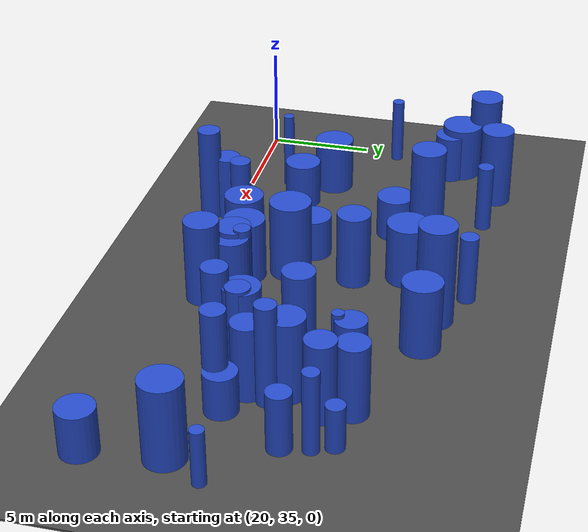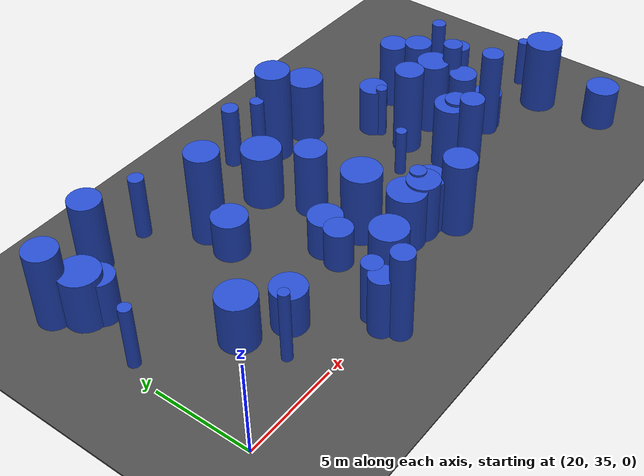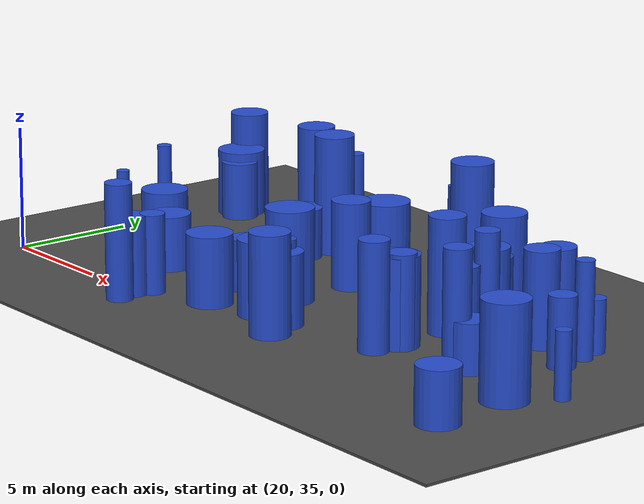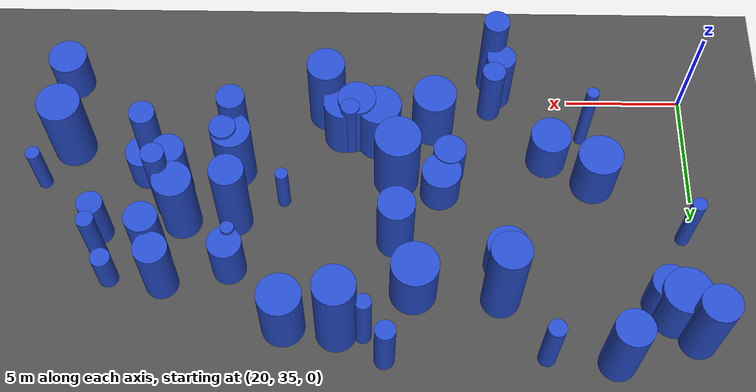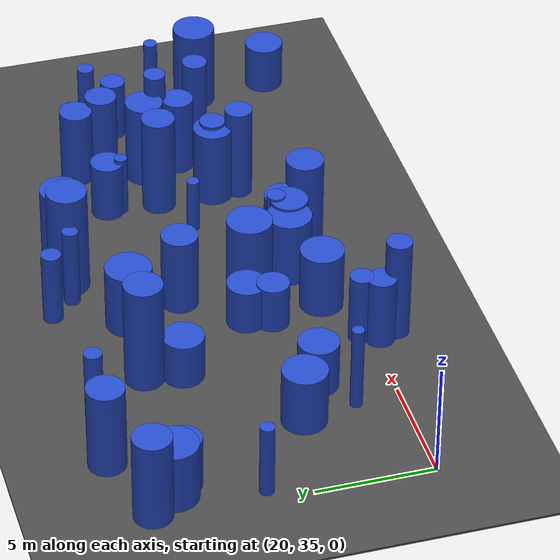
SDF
<sdf version="1.6">
 <world name="default">
  <model name="ground_plane">
   <static>1</static>
   <link name="link">
    <collision name="collision">
     <geometry><plane><normal>0 0 1</normal><size>100 100</size></plane></geometry>
     <surface><friction><ode><mu>100</mu><mu2>50</mu2></ode></friction></surface>
    </collision>
    <visual name="visual">
     <cast_shadows>0</cast_shadows>
     <geometry><plane><normal>0 0 1</normal><size>100 100</size></plane></geometry>
     <material>
      <script><uri>file://media/materials/scripts/gazebo.material</uri><name>Gazebo/Grey</name></script>
     </material>
    </visual>
   </link>
  </model>
  <model name="asphalt_plane">
   <static>1</static>
   <link name="link">
    <collision name="collision"><geometry><box><size>200 200 0.1</size></box></geometry></collision>
    <visual name="visual">
     <cast_shadows>0</cast_shadows>
     <geometry><box><size>200 200 0.1</size></box></geometry>
     <material>
      <script>
       <uri>model://asphalt_plane/materials/scripts</uri>
       <uri>model://asphalt_plane/materials/textures</uri>
       <name>vrc/asphalt</name>
      </script>
     </material>
    </visual>
   </link>
  </model>
  <model name="11">
   <static>0</static>
   <link name="link">
    <inertial>
     <mass>2</mass>
     <inertia><ixx>1.98008</ixx><ixy>0</ixy><ixz>0</ixz><iyy>1.98008</iyy><iyz>0</iyz><izz>0.982956</izz></inertia>
    </inertial>
    <collision name="collision">
     <geometry><cylinder><length>2.98858</length><radius>0.991441</radius></cylinder></geometry>
     <surface><contact><collide_without_contact>1</collide_without_contact></contact></surface>
    </collision>
    <visual name="visual">
     <geometry><cylinder><length>2.98858</length><radius>0.991441</radius></cylinder></geometry>
     <material>
      <script><uri>file://media/materials/scripts/gazebo.material</uri><name>Gazebo/Blue</name></script>
     </material>
    </visual>
    <gravity>0</gravity>
   </link>
   <pose>32.0029 44.3985 1.49429 0 -0 0</pose>
  </model>
  <model name="12">
   <static>0</static>
   <link name="link">
    <inertial>
     <mass>2</mass>
     <inertia><ixx>4.39104</ixx><ixy>0</ixy><ixz>0</ixz><iyy>4.39104</iyy><iyz>0</iyz><izz>0.677612</izz></inertia>
    </inertial>
    <collision name="collision">
     <geometry><cylinder><length>4.93086</length><radius>0.823172</radius></cylinder></geometry>
     <surface><contact><collide_without_contact>1</collide_without_contact></contact></surface>
    </collision>
    <visual name="visual">
     <geometry><cylinder><length>4.93086</length><radius>0.823172</radius></cylinder></geometry>
     <material>
      <script><uri>file://media/materials/scripts/gazebo.material</uri><name>Gazebo/Blue</name></script>
     </material>
    </visual>
    <gravity>0</gravity>
   </link>
   <pose>28.3847 44.6674 2.46543 0 -0 0</pose>
  </model>
  <model name="13">
   <static>0</static>
   <link name="link">
    <inertial>
     <mass>2</mass>
     <inertia><ixx>1.80797</ixx><ixy>0</ixy><ixz>0</ixz><iyy>1.80797</iyy><iyz>0</iyz><izz>0.69155</izz></inertia>
    </inertial>
    <collision name="collision">
     <geometry><cylinder><length>2.96195</length><radius>0.831595</radius></cylinder></geometry>
     <surface><contact><collide_without_contact>1</collide_without_contact></contact></surface>
    </collision>
    <visual name="visual">
     <geometry><cylinder><length>2.96195</length><radius>0.831595</radius></cylinder></geometry>
     <material>
      <script><uri>file://media/materials/scripts/gazebo.material</uri><name>Gazebo/Blue</name></script>
     </material>
    </visual>
    <gravity>0</gravity>
   </link>
   <pose>35.0335 36.8774 1.48097 0 -0 0</pose>
  </model>
  <model name="16">
   <static>0</static>
   <link name="link">
    <inertial>
     <mass>2</mass>
     <inertia><ixx>1.94796</ixx><ixy>0</ixy><ixz>0</ixz><iyy>1.94796</iyy><iyz>0</iyz><izz>0.38834</izz></inertia>
    </inertial>
    <collision name="collision">
     <geometry><cylinder><length>3.24388</length><radius>0.623169</radius></cylinder></geometry>
     <surface><contact><collide_without_contact>1</collide_without_contact></contact></surface>
    </collision>
    <visual name="visual">
     <geometry><cylinder><length>3.24388</length><radius>0.623169</radius></cylinder></geometry>
     <material>
      <script><uri>file://media/materials/scripts/gazebo.material</uri><name>Gazebo/Blue</name></script>
     </material>
    </visual>
    <gravity>0</gravity>
   </link>
   <pose>28.2373 34.7081 1.62194 0 -0 0</pose>
  </model>
  <model name="18">
   <static>0</static>
   <link name="link">
    <inertial>
     <mass>2</mass>
     <inertia><ixx>1.36588</ixx><ixy>0</ixy><ixz>0</ixz><iyy>1.36588</iyy><iyz>0</iyz><izz>0.264625</izz></inertia>
    </inertial>
    <collision name="collision">
     <geometry><cylinder><length>2.72056</length><radius>0.514417</radius></cylinder></geometry>
     <surface><contact><collide_without_contact>1</collide_without_contact></contact></surface>
    </collision>
    <visual name="visual">
     <geometry><cylinder><length>2.72056</length><radius>0.514417</radius></cylinder></geometry>
     <material>
      <script><uri>file://media/materials/scripts/gazebo.material</uri><name>Gazebo/Blue</name></script>
     </material>
    </visual>
    <gravity>0</gravity>
   </link>
   <pose>28.2068 44.8037 1.36028 0 -0 0</pose>
  </model>
  <model name="20">
   <static>0</static>
   <link name="link">
    <inertial>
     <mass>2</mass>
     <inertia><ixx>2.53516</ixx><ixy>0</ixy><ixz>0</ixz><iyy>2.53516</iyy><iyz>0</iyz><izz>0.131135</izz></inertia>
    </inertial>
    <collision name="collision">
     <geometry><cylinder><length>3.84936</length><radius>0.362126</radius></cylinder></geometry>
     <surface><contact><collide_without_contact>1</collide_without_contact></contact></surface>
    </collision>
    <visual name="visual">
     <geometry><cylinder><length>3.84936</length><radius>0.362126</radius></cylinder></geometry>
     <material>
      <script><uri>file://media/materials/scripts/gazebo.material</uri><name>Gazebo/Blue</name></script>
     </material>
    </visual>
    <gravity>0</gravity>
   </link>
   <pose>45.1067 43.0173 1.92468 0 -0 0</pose>
  </model>
  <model name="29">
   <static>0</static>
   <link name="link">
    <inertial>
     <mass>2</mass>
     <inertia><ixx>1.64089</ixx><ixy>0</ixy><ixz>0</ixz><iyy>1.64089</iyy><iyz>0</iyz><izz>0.902527</izz></inertia>
    </inertial>
    <collision name="collision">
     <geometry><cylinder><length>2.67166</length><radius>0.950014</radius></cylinder></geometry>
     <surface><contact><collide_without_contact>1</collide_without_contact></contact></surface>
    </collision>
    <visual name="visual">
     <geometry><cylinder><length>2.67166</length><radius>0.950014</radius></cylinder></geometry>
     <material>
      <script><uri>file://media/materials/scripts/gazebo.material</uri><name>Gazebo/Blue</name></script>
     </material>
    </visual>
    <gravity>0</gravity>
   </link>
   <pose>24.1929 39.1758 1.33583 0 -0 0</pose>
  </model>
  <model name="31">
   <static>0</static>
   <link name="link">
    <inertial>
     <mass>2</mass>
     <inertia><ixx>1.24573</ixx><ixy>0</ixy><ixz>0</ixz><iyy>1.24573</iyy><iyz>0</iyz><izz>0.741657</izz></inertia>
    </inertial>
    <collision name="collision">
     <geometry><cylinder><length>2.29115</length><radius>0.861195</radius></cylinder></geometry>
     <surface><contact><collide_without_contact>1</collide_without_contact></contact></surface>
    </collision>
    <visual name="visual">
     <geometry><cylinder><length>2.29115</length><radius>0.861195</radius></cylinder></geometry>
     <material>
      <script><uri>file://media/materials/scripts/gazebo.material</uri><name>Gazebo/Blue</name></script>
     </material>
    </visual>
    <gravity>0</gravity>
   </link>
   <pose>26.1555 38.0122 1.14558 0 -0 0</pose>
  </model>
  <model name="35">
   <static>0</static>
   <link name="link">
    <inertial>
     <mass>2</mass>
     <inertia><ixx>2.36887</ixx><ixy>0</ixy><ixz>0</ixz><iyy>2.36887</iyy><iyz>0</iyz><izz>0.828005</izz></inertia>
    </inertial>
    <collision name="collision">
     <geometry><cylinder><length>3.42479</length><radius>0.909948</radius></cylinder></geometry>
     <surface><contact><collide_without_contact>1</collide_without_contact></contact></surface>
    </collision>
    <visual name="visual">
     <geometry><cylinder><length>3.42479</length><radius>0.909948</radius></cylinder></geometry>
     <material>
      <script><uri>file://media/materials/scripts/gazebo.material</uri><name>Gazebo/Blue</name></script>
     </material>
    </visual>
    <gravity>0</gravity>
   </link>
   <pose>37.3259 45.9655 1.71239 0 -0 0</pose>
  </model>
  <model name="36">
   <static>0</static>
   <link name="link">
    <inertial>
     <mass>2</mass>
     <inertia><ixx>1.9741</ixx><ixy>0</ixy><ixz>0</ixz><iyy>1.9741</iyy><iyz>0</iyz><izz>0.180988</izz></inertia>
    </inertial>
    <collision name="collision">
     <geometry><cylinder><length>3.36179</length><radius>0.425426</radius></cylinder></geometry>
     <surface><contact><collide_without_contact>1</collide_without_contact></contact></surface>
    </collision>
    <visual name="visual">
     <geometry><cylinder><length>3.36179</length><radius>0.425426</radius></cylinder></geometry>
     <material>
      <script><uri>file://media/materials/scripts/gazebo.material</uri><name>Gazebo/Blue</name></script>
     </material>
    </visual>
    <gravity>0</gravity>
   </link>
   <pose>33.1796 47.3533 1.6809 0 -0 0</pose>
  </model>
  <model name="47">
   <static>0</static>
   <link name="link">
    <inertial>
     <mass>2</mass>
     <inertia><ixx>3.0805</ixx><ixy>0</ixy><ixz>0</ixz><iyy>3.0805</iyy><iyz>0</iyz><izz>0.647324</izz></inertia>
    </inertial>
    <collision name="collision">
     <geometry><cylinder><length>4.06707</length><radius>0.804564</radius></cylinder></geometry>
     <surface><contact><collide_without_contact>1</collide_without_contact></contact></surface>
    </collision>
    <visual name="visual">
     <geometry><cylinder><length>4.06707</length><radius>0.804564</radius></cylinder></geometry>
     <material>
      <script><uri>file://media/materials/scripts/gazebo.material</uri><name>Gazebo/Blue</name></script>
     </material>
    </visual>
    <gravity>0</gravity>
   </link>
   <pose>20.3861 46.3769 2.03353 0 -0 0</pose>
  </model>
  <model name="52">
   <static>0</static>
   <link name="link">
    <inertial>
     <mass>2</mass>
     <inertia><ixx>2.45511</ixx><ixy>0</ixy><ixz>0</ixz><iyy>2.45511</iyy><iyz>0</iyz><izz>0.610488</izz></inertia>
    </inertial>
    <collision name="collision">
     <geometry><cylinder><length>3.59154</length><radius>0.781337</radius></cylinder></geometry>
     <surface><contact><collide_without_contact>1</collide_without_contact></contact></surface>
    </collision>
    <visual name="visual">
     <geometry><cylinder><length>3.59154</length><radius>0.781337</radius></cylinder></geometry>
     <material>
      <script><uri>file://media/materials/scripts/gazebo.material</uri><name>Gazebo/Blue</name></script>
     </material>
    </visual>
    <gravity>0</gravity>
   </link>
   <pose>32.7626 42.022 1.79577 0 -0 0</pose>
  </model>
  <model name="53">
   <static>0</static>
   <link name="link">
    <inertial>
     <mass>2</mass>
     <inertia><ixx>1.89191</ixx><ixy>0</ixy><ixz>0</ixz><iyy>1.89191</iyy><iyz>0</iyz><izz>0.1601</izz></inertia>
    </inertial>
    <collision name="collision">
     <geometry><cylinder><length>3.29714</length><radius>0.400125</radius></cylinder></geometry>
     <surface><contact><collide_without_contact>1</collide_without_contact></contact></surface>
    </collision>
    <visual name="visual">
     <geometry><cylinder><length>3.29714</length><radius>0.400125</radius></cylinder></geometry>
     <material>
      <script><uri>file://media/materials/scripts/gazebo.material</uri><name>Gazebo/Blue</name></script>
     </material>
    </visual>
    <gravity>0</gravity>
   </link>
   <pose>34.7148 37.3115 1.64857 0 -0 0</pose>
  </model>
  <model name="59">
   <static>0</static>
   <link name="link">
    <inertial>
     <mass>2</mass>
     <inertia><ixx>1.12894</ixx><ixy>0</ixy><ixz>0</ixz><iyy>1.12894</iyy><iyz>0</iyz><izz>0.76588</izz></inertia>
    </inertial>
    <collision name="collision">
     <geometry><cylinder><length>2.11565</length><radius>0.875146</radius></cylinder></geometry>
     <surface><contact><collide_without_contact>1</collide_without_contact></contact></surface>
    </collision>
    <visual name="visual">
     <geometry><cylinder><length>2.11565</length><radius>0.875146</radius></cylinder></geometry>
     <material>
      <script><uri>file://media/materials/scripts/gazebo.material</uri><name>Gazebo/Blue</name></script>
     </material>
    </visual>
    <gravity>0</gravity>
   </link>
   <pose>28.177 43.0977 1.05782 0 -0 0</pose>
  </model>
  <model name="64">
   <static>0</static>
   <link name="link">
    <inertial>
     <mass>2</mass>
     <inertia><ixx>1.07162</ixx><ixy>0</ixy><ixz>0</ixz><iyy>1.07162</iyy><iyz>0</iyz><izz>0.712238</izz></inertia>
    </inertial>
    <collision name="collision">
     <geometry><cylinder><length>2.07196</length><radius>0.843942</radius></cylinder></geometry>
     <surface><contact><collide_without_contact>1</collide_without_contact></contact></surface>
    </collision>
    <visual name="visual">
     <geometry><cylinder><length>2.07196</length><radius>0.843942</radius></cylinder></geometry>
     <material>
      <script><uri>file://media/materials/scripts/gazebo.material</uri><name>Gazebo/Blue</name></script>
     </material>
    </visual>
    <gravity>0</gravity>
   </link>
   <pose>30.8302 39.6819 1.03598 0 -0 0</pose>
  </model>
  <model name="66">
   <static>0</static>
   <link name="link">
    <inertial>
     <mass>2</mass>
     <inertia><ixx>3.10959</ixx><ixy>0</ixy><ixz>0</ixz><iyy>3.10959</iyy><iyz>0</iyz><izz>0.654406</izz></inertia>
    </inertial>
    <collision name="collision">
     <geometry><cylinder><length>4.08587</length><radius>0.808954</radius></cylinder></geometry>
     <surface><contact><collide_without_contact>1</collide_without_contact></contact></surface>
    </collision>
    <visual name="visual">
     <geometry><cylinder><length>4.08587</length><radius>0.808954</radius></cylinder></geometry>
     <material>
      <script><uri>file://media/materials/scripts/gazebo.material</uri><name>Gazebo/Blue</name></script>
     </material>
    </visual>
    <gravity>0</gravity>
   </link>
   <pose>35.7565 35.7398 2.04293 0 -0 0</pose>
  </model>
  <model name="91">
   <static>0</static>
   <link name="link">
    <inertial>
     <mass>2</mass>
     <inertia><ixx>1.88416</ixx><ixy>0</ixy><ixz>0</ixz><iyy>1.88416</iyy><iyz>0</iyz><izz>0.248682</izz></inertia>
    </inertial>
    <collision name="collision">
     <geometry><cylinder><length>3.24945</length><radius>0.498681</radius></cylinder></geometry>
     <surface><contact><collide_without_contact>1</collide_without_contact></contact></surface>
    </collision>
    <visual name="visual">
     <geometry><cylinder><length>3.24945</length><radius>0.498681</radius></cylinder></geometry>
     <material>
      <script><uri>file://media/materials/scripts/gazebo.material</uri><name>Gazebo/Blue</name></script>
     </material>
    </visual>
    <gravity>0</gravity>
   </link>
   <pose>28.5794 35.4647 1.62472 0 -0 0</pose>
  </model>
  <model name="94">
   <static>0</static>
   <link name="link">
    <inertial>
     <mass>2</mass>
     <inertia>
      <ixx>2.56569</ixx>
      <ixy>0</ixy>
      <ixz>0</ixz>
      <iyy>2.56569</iyy>
      <iyz>0</iyz>
      <izz>0.0685873</izz>
     </inertia>
    </inertial>
    <collision name="collision">
     <geometry><cylinder><length>3.89722</length><radius>0.261892</radius></cylinder></geometry>
     <surface><contact><collide_without_contact>1</collide_without_contact></contact></surface>
    </collision>
    <visual name="visual">
     <geometry><cylinder><length>3.89722</length><radius>0.261892</radius></cylinder></geometry>
     <material>
      <script><uri>file://media/materials/scripts/gazebo.material</uri><name>Gazebo/Blue</name></script>
     </material>
    </visual>
    <gravity>0</gravity>
   </link>
   <pose>24.5646 36.8898 1.94861 0 -0 0</pose>
  </model>
  <model name="103">
   <static>0</static>
   <link name="link">
    <inertial>
     <mass>2</mass>
     <inertia><ixx>3.8726</ixx><ixy>0</ixy><ixz>0</ixz><iyy>3.8726</iyy><iyz>0</iyz><izz>0.29541</izz></inertia>
    </inertial>
    <collision name="collision">
     <geometry><cylinder><length>4.72751</length><radius>0.543517</radius></cylinder></geometry>
     <surface><contact><collide_without_contact>1</collide_without_contact></contact></surface>
    </collision>
    <visual name="visual">
     <geometry><cylinder><length>4.72751</length><radius>0.543517</radius></cylinder></geometry>
     <material>
      <script><uri>file://media/materials/scripts/gazebo.material</uri><name>Gazebo/Blue</name></script>
     </material>
    </visual>
    <gravity>0</gravity>
   </link>
   <pose>28.5316 33.9189 2.36376 0 -0 0</pose>
  </model>
  <model name="106">
   <static>0</static>
   <link name="link">
    <inertial>
     <mass>2</mass>
     <inertia>
      <ixx>0.862159</ixx>
      <ixy>0</ixy>
      <ixz>0</ixz>
      <iyy>0.862159</iyy>
      <iyz>0</iyz>
      <izz>0.17685</izz>
     </inertia>
    </inertial>
    <collision name="collision">
     <geometry><cylinder><length>2.15462</length><radius>0.420535</radius></cylinder></geometry>
     <surface><contact><collide_without_contact>1</collide_without_contact></contact></surface>
    </collision>
    <visual name="visual">
     <geometry><cylinder><length>2.15462</length><radius>0.420535</radius></cylinder></geometry>
     <material>
      <script><uri>file://media/materials/scripts/gazebo.material</uri><name>Gazebo/Blue</name></script>
     </material>
    </visual>
    <gravity>0</gravity>
   </link>
   <pose>44.7238 43.9 1.07731 0 -0 0</pose>
  </model>
  <model name="107">
   <static>0</static>
   <link name="link">
    <inertial>
     <mass>2</mass>
     <inertia><ixx>4.47739</ixx><ixy>0</ixy><ixz>0</ixz><iyy>4.47739</iyy><iyz>0</iyz><izz>0.746232</izz></inertia>
    </inertial>
    <collision name="collision">
     <geometry><cylinder><length>4.96242</length><radius>0.863847</radius></cylinder></geometry>
     <surface><contact><collide_without_contact>1</collide_without_contact></contact></surface>
    </collision>
    <visual name="visual">
     <geometry><cylinder><length>4.96242</length><radius>0.863847</radius></cylinder></geometry>
     <material>
      <script><uri>file://media/materials/scripts/gazebo.material</uri><name>Gazebo/Blue</name></script>
     </material>
    </visual>
    <gravity>0</gravity>
   </link>
   <pose>35.1416 46.2041 2.48121 0 -0 0</pose>
  </model>
  <model name="110">
   <static>0</static>
   <link name="link">
    <inertial>
     <mass>2</mass>
     <inertia><ixx>1.17461</ixx><ixy>0</ixy><ixz>0</ixz><iyy>1.17461</iyy><iyz>0</iyz><izz>0.700789</izz></inertia>
    </inertial>
    <collision name="collision">
     <geometry><cylinder><length>2.2238</length><radius>0.837131</radius></cylinder></geometry>
     <surface><contact><collide_without_contact>1</collide_without_contact></contact></surface>
    </collision>
    <visual name="visual">
     <geometry><cylinder><length>2.2238</length><radius>0.837131</radius></cylinder></geometry>
     <material>
      <script><uri>file://media/materials/scripts/gazebo.material</uri><name>Gazebo/Blue</name></script>
     </material>
    </visual>
    <gravity>0</gravity>
   </link>
   <pose>47.2535 34.2331 1.1119 0 -0 0</pose>
  </model>
  <model name="112">
   <static>0</static>
   <link name="link">
    <inertial>
     <mass>2</mass>
     <inertia><ixx>1.47241</ixx><ixy>0</ixy><ixz>0</ixz><iyy>1.47241</iyy><iyz>0</iyz><izz>0.295905</izz></inertia>
    </inertial>
    <collision name="collision">
     <geometry><cylinder><length>2.81899</length><radius>0.543972</radius></cylinder></geometry>
     <surface><contact><collide_without_contact>1</collide_without_contact></contact></surface>
    </collision>
    <visual name="visual">
     <geometry><cylinder><length>2.81899</length><radius>0.543972</radius></cylinder></geometry>
     <material>
      <script><uri>file://media/materials/scripts/gazebo.material</uri><name>Gazebo/Blue</name></script>
     </material>
    </visual>
    <gravity>0</gravity>
   </link>
   <pose>45.2765 41.7788 1.4095 0 -0 0</pose>
  </model>
  <model name="121">
   <static>0</static>
   <link name="link">
    <inertial>
     <mass>2</mass>
     <inertia><ixx>2.51379</ixx><ixy>0</ixy><ixz>0</ixz><iyy>2.51379</iyy><iyz>0</iyz><izz>0.71824</izz></inertia>
    </inertial>
    <collision name="collision">
     <geometry><cylinder><length>3.59556</length><radius>0.84749</radius></cylinder></geometry>
     <surface><contact><collide_without_contact>1</collide_without_contact></contact></surface>
    </collision>
    <visual name="visual">
     <geometry><cylinder><length>3.59556</length><radius>0.84749</radius></cylinder></geometry>
     <material>
      <script><uri>file://media/materials/scripts/gazebo.material</uri><name>Gazebo/Blue</name></script>
     </material>
    </visual>
    <gravity>0</gravity>
   </link>
   <pose>39.6635 38.7081 1.79778 0 -0 0</pose>
  </model>
  <model name="124">
   <static>0</static>
   <link name="link">
    <inertial>
     <mass>2</mass>
     <inertia><ixx>3.98834</ixx><ixy>0</ixy><ixz>0</ixz><iyy>3.98834</iyy><iyz>0</iyz><izz>0.224128</izz></inertia>
    </inertial>
    <collision name="collision">
     <geometry><cylinder><length>4.82262</length><radius>0.473421</radius></cylinder></geometry>
     <surface><contact><collide_without_contact>1</collide_without_contact></contact></surface>
    </collision>
    <visual name="visual">
     <geometry><cylinder><length>4.82262</length><radius>0.473421</radius></cylinder></geometry>
     <material>
      <script><uri>file://media/materials/scripts/gazebo.material</uri><name>Gazebo/Blue</name></script>
     </material>
    </visual>
    <gravity>0</gravity>
   </link>
   <pose>42.5156 40.5416 2.41131 0 -0 0</pose>
  </model>
  <model name="127">
   <static>0</static>
   <link name="link">
    <inertial>
     <mass>2</mass>
     <inertia><ixx>1.9233</ixx><ixy>0</ixy><ixz>0</ixz><iyy>1.9233</iyy><iyz>0</iyz><izz>0.0898963</izz></inertia>
    </inertial>
    <collision name="collision">
     <geometry><cylinder><length>3.3571</length><radius>0.299827</radius></cylinder></geometry>
     <surface><contact><collide_without_contact>1</collide_without_contact></contact></surface>
    </collision>
    <visual name="visual">
     <geometry><cylinder><length>3.3571</length><radius>0.299827</radius></cylinder></geometry>
     <material>
      <script><uri>file://media/materials/scripts/gazebo.material</uri><name>Gazebo/Blue</name></script>
     </material>
    </visual>
    <gravity>0</gravity>
   </link>
   <pose>20.5448 41.7821 1.67855 0 -0 0</pose>
  </model>
  <model name="138">
   <static>0</static>
   <link name="link">
    <inertial>
     <mass>2</mass>
     <inertia><ixx>2.86616</ixx><ixy>0</ixy><ixz>0</ixz><iyy>2.86616</iyy><iyz>0</iyz><izz>0.94196</izz></inertia>
    </inertial>
    <collision name="collision">
     <geometry><cylinder><length>3.79092</length><radius>0.970546</radius></cylinder></geometry>
     <surface><contact><collide_without_contact>1</collide_without_contact></contact></surface>
    </collision>
    <visual name="visual">
     <geometry><cylinder><length>3.79092</length><radius>0.970546</radius></cylinder></geometry>
     <material>
      <script><uri>file://media/materials/scripts/gazebo.material</uri><name>Gazebo/Blue</name></script>
     </material>
    </visual>
    <gravity>0</gravity>
   </link>
   <pose>32.707 39.0409 1.89546 0 -0 0</pose>
  </model>
  <model name="145">
   <static>0</static>
   <link name="link">
    <inertial>
     <mass>2</mass>
     <inertia><ixx>1.43935</ixx><ixy>0</ixy><ixz>0</ixz><iyy>1.43935</iyy><iyz>0</iyz><izz>0.507497</izz></inertia>
    </inertial>
    <collision name="collision">
     <geometry><cylinder><length>2.66713</length><radius>0.712388</radius></cylinder></geometry>
     <surface><contact><collide_without_contact>1</collide_without_contact></contact></surface>
    </collision>
    <visual name="visual">
     <geometry><cylinder><length>2.66713</length><radius>0.712388</radius></cylinder></geometry>
     <material>
      <script><uri>file://media/materials/scripts/gazebo.material</uri><name>Gazebo/Blue</name></script>
     </material>
    </visual>
    <gravity>0</gravity>
   </link>
   <pose>39.6902 43.406 1.33357 0 -0 0</pose>
  </model>
  <model name="152">
   <static>0</static>
   <link name="link">
    <inertial>
     <mass>2</mass>
     <inertia><ixx>2.90918</ixx><ixy>0</ixy><ixz>0</ixz><iyy>2.90918</iyy><iyz>0</iyz><izz>0.669823</izz></inertia>
    </inertial>
    <collision name="collision">
     <geometry><cylinder><length>3.93009</length><radius>0.818427</radius></cylinder></geometry>
     <surface><contact><collide_without_contact>1</collide_without_contact></contact></surface>
    </collision>
    <visual name="visual">
     <geometry><cylinder><length>3.93009</length><radius>0.818427</radius></cylinder></geometry>
     <material>
      <script><uri>file://media/materials/scripts/gazebo.material</uri><name>Gazebo/Blue</name></script>
     </material>
    </visual>
    <gravity>0</gravity>
   </link>
   <pose>41.8241 41.2132 1.96505 0 -0 0</pose>
  </model>
  <model name="154">
   <static>0</static>
   <link name="link">
    <inertial>
     <mass>2</mass>
     <inertia><ixx>1.969</ixx><ixy>0</ixy><ixz>0</ixz><iyy>1.969</iyy><iyz>0</iyz><izz>0.143635</izz></inertia>
    </inertial>
    <collision name="collision">
     <geometry><cylinder><length>3.37388</length><radius>0.378992</radius></cylinder></geometry>
     <surface><contact><collide_without_contact>1</collide_without_contact></contact></surface>
    </collision>
    <visual name="visual">
     <geometry><cylinder><length>3.37388</length><radius>0.378992</radius></cylinder></geometry>
     <material>
      <script><uri>file://media/materials/scripts/gazebo.material</uri><name>Gazebo/Blue</name></script>
     </material>
    </visual>
    <gravity>0</gravity>
   </link>
   <pose>26.5902 47.1904 1.68694 0 -0 0</pose>
  </model>
  <model name="162">
   <static>0</static>
   <link name="link">
    <inertial>
     <mass>2</mass>
     <inertia><ixx>1.81525</ixx><ixy>0</ixy><ixz>0</ixz><iyy>1.81525</iyy><iyz>0</iyz><izz>0.856891</izz></inertia>
    </inertial>
    <collision name="collision">
     <geometry><cylinder><length>2.88458</length><radius>0.925684</radius></cylinder></geometry>
     <surface><contact><collide_without_contact>1</collide_without_contact></contact></surface>
    </collision>
    <visual name="visual">
     <geometry><cylinder><length>2.88458</length><radius>0.925684</radius></cylinder></geometry>
     <material>
      <script><uri>file://media/materials/scripts/gazebo.material</uri><name>Gazebo/Blue</name></script>
     </material>
    </visual>
    <gravity>0</gravity>
   </link>
   <pose>31.1056 36.3687 1.44229 0 -0 0</pose>
  </model>
  <model name="174">
   <static>0</static>
   <link name="link">
    <inertial>
     <mass>2</mass>
     <inertia><ixx>2.3673</ixx><ixy>0</ixy><ixz>0</ixz><iyy>2.3673</iyy><iyz>0</iyz><izz>0.496156</izz></inertia>
    </inertial>
    <collision name="collision">
     <geometry><cylinder><length>3.56586</length><radius>0.704384</radius></cylinder></geometry>
     <surface><contact><collide_without_contact>1</collide_without_contact></contact></surface>
    </collision>
    <visual name="visual">
     <geometry><cylinder><length>3.56586</length><radius>0.704384</radius></cylinder></geometry>
     <material>
      <script><uri>file://media/materials/scripts/gazebo.material</uri><name>Gazebo/Blue</name></script>
     </material>
    </visual>
    <gravity>0</gravity>
   </link>
   <pose>42.4641 44.1054 1.78293 0 -0 0</pose>
  </model>
  <model name="175">
   <static>0</static>
   <link name="link">
    <inertial>
     <mass>2</mass>
     <inertia>
      <ixx>1.13312</ixx>
      <ixy>0</ixy>
      <ixz>0</ixz>
      <iyy>1.13312</iyy>
      <iyz>0</iyz>
      <izz>0.0742613</izz>
     </inertia>
    </inertial>
    <collision name="collision">
     <geometry><cylinder><length>2.56436</length><radius>0.272509</radius></cylinder></geometry>
     <surface><contact><collide_without_contact>1</collide_without_contact></contact></surface>
    </collision>
    <visual name="visual">
     <geometry><cylinder><length>2.56436</length><radius>0.272509</radius></cylinder></geometry>
     <material>
      <script><uri>file://media/materials/scripts/gazebo.material</uri><name>Gazebo/Blue</name></script>
     </material>
    </visual>
    <gravity>0</gravity>
   </link>
   <pose>37.5311 40.1699 1.28218 0 -0 0</pose>
  </model>
  <model name="187">
   <static>0</static>
   <link name="link">
    <inertial>
     <mass>2</mass>
     <inertia><ixx>2.02524</ixx><ixy>0</ixy><ixz>0</ixz><iyy>2.02524</iyy><iyz>0</iyz><izz>0.662863</izz></inertia>
    </inertial>
    <collision name="collision">
     <geometry><cylinder><length>3.18793</length><radius>0.814164</radius></cylinder></geometry>
     <surface><contact><collide_without_contact>1</collide_without_contact></contact></surface>
    </collision>
    <visual name="visual">
     <geometry><cylinder><length>3.18793</length><radius>0.814164</radius></cylinder></geometry>
     <material>
      <script><uri>file://media/materials/scripts/gazebo.material</uri><name>Gazebo/Blue</name></script>
     </material>
    </visual>
    <gravity>0</gravity>
   </link>
   <pose>34.4383 36.8271 1.59396 0 -0 0</pose>
  </model>
  <model name="188">
   <static>0</static>
   <link name="link">
    <inertial>
     <mass>2</mass>
     <inertia><ixx>3.34287</ixx><ixy>0</ixy><ixz>0</ixz><iyy>3.34287</iyy><iyz>0</iyz><izz>0.355137</izz></inertia>
    </inertial>
    <collision name="collision">
     <geometry><cylinder><length>4.35796</length><radius>0.595934</radius></cylinder></geometry>
     <surface><contact><collide_without_contact>1</collide_without_contact></contact></surface>
    </collision>
    <visual name="visual">
     <geometry><cylinder><length>4.35796</length><radius>0.595934</radius></cylinder></geometry>
     <material>
      <script><uri>file://media/materials/scripts/gazebo.material</uri><name>Gazebo/Blue</name></script>
     </material>
    </visual>
    <gravity>0</gravity>
   </link>
   <pose>39.6522 37.563 2.17898 0 -0 0</pose>
  </model>
  <model name="193">
   <static>0</static>
   <link name="link">
    <inertial>
     <mass>2</mass>
     <inertia><ixx>2.66169</ixx><ixy>0</ixy><ixz>0</ixz><iyy>2.66169</iyy><iyz>0</iyz><izz>0.475672</izz></inertia>
    </inertial>
    <collision name="collision">
     <geometry><cylinder><length>3.81355</length><radius>0.68969</radius></cylinder></geometry>
     <surface><contact><collide_without_contact>1</collide_without_contact></contact></surface>
    </collision>
    <visual name="visual">
     <geometry><cylinder><length>3.81355</length><radius>0.68969</radius></cylinder></geometry>
     <material>
      <script><uri>file://media/materials/scripts/gazebo.material</uri><name>Gazebo/Blue</name></script>
     </material>
    </visual>
    <gravity>0</gravity>
   </link>
   <pose>42.9227 42.8711 1.90677 0 -0 0</pose>
  </model>
  <model name="195">
   <static>0</static>
   <link name="link">
    <inertial>
     <mass>2</mass>
     <inertia>
      <ixx>1.20845</ixx>
      <ixy>0</ixy>
      <ixz>0</ixz>
      <iyy>1.20845</iyy>
      <iyz>0</iyz>
      <izz>0.0930295</izz>
     </inertia>
    </inertial>
    <collision name="collision">
     <geometry><cylinder><length>2.64038</length><radius>0.305007</radius></cylinder></geometry>
     <surface><contact><collide_without_contact>1</collide_without_contact></contact></surface>
    </collision>
    <visual name="visual">
     <geometry><cylinder><length>2.64038</length><radius>0.305007</radius></cylinder></geometry>
     <material>
      <script><uri>file://media/materials/scripts/gazebo.material</uri><name>Gazebo/Blue</name></script>
     </material>
    </visual>
    <gravity>0</gravity>
   </link>
   <pose>47.9745 39.3602 1.32019 0 -0 0</pose>
  </model>
  <model name="196">
   <static>0</static>
   <link name="link">
    <inertial>
     <mass>2</mass>
     <inertia><ixx>2.40186</ixx><ixy>0</ixy><ixz>0</ixz><iyy>2.40186</iyy><iyz>0</iyz><izz>0.474672</izz></inertia>
    </inertial>
    <collision name="collision">
     <geometry><cylinder><length>3.60377</length><radius>0.688964</radius></cylinder></geometry>
     <surface><contact><collide_without_contact>1</collide_without_contact></contact></surface>
    </collision>
    <visual name="visual">
     <geometry><cylinder><length>3.60377</length><radius>0.688964</radius></cylinder></geometry>
     <material>
      <script><uri>file://media/materials/scripts/gazebo.material</uri><name>Gazebo/Blue</name></script>
     </material>
    </visual>
    <gravity>0</gravity>
   </link>
   <pose>42.1627 39.6268 1.80188 0 -0 0</pose>
  </model>
  <model name="203">
   <static>0</static>
   <link name="link">
    <inertial>
     <mass>2</mass>
     <inertia>
      <ixx>1.39088</ixx>
      <ixy>0</ixy>
      <ixz>0</ixz>
      <iyy>1.39088</iyy>
      <iyz>0</iyz>
      <izz>0.0793249</izz>
     </inertia>
    </inertial>
    <collision name="collision">
     <geometry><cylinder><length>2.84733</length><radius>0.281647</radius></cylinder></geometry>
     <surface><contact><collide_without_contact>1</collide_without_contact></contact></surface>
    </collision>
    <visual name="visual">
     <geometry><cylinder><length>2.84733</length><radius>0.281647</radius></cylinder></geometry>
     <material>
      <script><uri>file://media/materials/scripts/gazebo.material</uri><name>Gazebo/Blue</name></script>
     </material>
    </visual>
    <gravity>0</gravity>
   </link>
   <pose>39.5835 42.8247 1.42367 0 -0 0</pose>
  </model>
  <model name="205">
   <static>0</static>
   <link name="link">
    <inertial>
     <mass>2</mass>
     <inertia><ixx>3.81012</ixx><ixy>0</ixy><ixz>0</ixz><iyy>3.81012</iyy><iyz>0</iyz><izz>0.29014</izz></inertia>
    </inertial>
    <collision name="collision">
     <geometry><cylinder><length>4.68938</length><radius>0.538647</radius></cylinder></geometry>
     <surface><contact><collide_without_contact>1</collide_without_contact></contact></surface>
    </collision>
    <visual name="visual">
     <geometry><cylinder><length>4.68938</length><radius>0.538647</radius></cylinder></geometry>
     <material>
      <script><uri>file://media/materials/scripts/gazebo.material</uri><name>Gazebo/Blue</name></script>
     </material>
    </visual>
    <gravity>0</gravity>
   </link>
   <pose>43.1526 38.5787 2.34469 0 -0 0</pose>
  </model>
  <model name="206">
   <static>0</static>
   <link name="link">
    <inertial>
     <mass>2</mass>
     <inertia><ixx>2.36079</ixx><ixy>0</ixy><ixz>0</ixz><iyy>2.36079</iyy><iyz>0</iyz><izz>0.11536</izz></inertia>
    </inertial>
    <collision name="collision">
     <geometry><cylinder><length>3.71735</length><radius>0.339647</radius></cylinder></geometry>
     <surface><contact><collide_without_contact>1</collide_without_contact></contact></surface>
    </collision>
    <visual name="visual">
     <geometry><cylinder><length>3.71735</length><radius>0.339647</radius></cylinder></geometry>
     <material>
      <script><uri>file://media/materials/scripts/gazebo.material</uri><name>Gazebo/Blue</name></script>
     </material>
    </visual>
    <gravity>0</gravity>
   </link>
   <pose>34.0409 46.3387 1.85867 0 -0 0</pose>
  </model>
  <model name="212">
   <static>0</static>
   <link name="link">
    <inertial>
     <mass>2</mass>
     <inertia><ixx>0.95686</ixx><ixy>0</ixy><ixz>0</ixz><iyy>0.95686</iyy><iyz>0</iyz><izz>0.556705</izz></inertia>
    </inertial>
    <collision name="collision">
     <geometry><cylinder><length>2.01768</length><radius>0.746127</radius></cylinder></geometry>
     <surface><contact><collide_without_contact>1</collide_without_contact></contact></surface>
    </collision>
    <visual name="visual">
     <geometry><cylinder><length>2.01768</length><radius>0.746127</radius></cylinder></geometry>
     <material>
      <script><uri>file://media/materials/scripts/gazebo.material</uri><name>Gazebo/Blue</name></script>
     </material>
    </visual>
    <gravity>0</gravity>
   </link>
   <pose>43.5083 38.887 1.00884 0 -0 0</pose>
  </model>
  <model name="213">
   <static>0</static>
   <link name="link">
    <inertial>
     <mass>2</mass>
     <inertia><ixx>1.00609</ixx><ixy>0</ixy><ixz>0</ixz><iyy>1.00609</iyy><iyz>0</iyz><izz>0.486939</izz></inertia>
    </inertial>
    <collision name="collision">
     <geometry><cylinder><length>2.13909</length><radius>0.69781</radius></cylinder></geometry>
     <surface><contact><collide_without_contact>1</collide_without_contact></contact></surface>
    </collision>
    <visual name="visual">
     <geometry><cylinder><length>2.13909</length><radius>0.69781</radius></cylinder></geometry>
     <material>
      <script><uri>file://media/materials/scripts/gazebo.material</uri><name>Gazebo/Blue</name></script>
     </material>
    </visual>
    <gravity>0</gravity>
   </link>
   <pose>30.4654 38.6609 1.06955 0 -0 0</pose>
  </model>
  <model name="215">
   <static>0</static>
   <link name="link">
    <inertial>
     <mass>2</mass>
     <inertia><ixx>3.82841</ixx><ixy>0</ixy><ixz>0</ixz><iyy>3.82841</iyy><iyz>0</iyz><izz>0.519269</izz></inertia>
    </inertial>
    <collision name="collision">
     <geometry><cylinder><length>4.62738</length><radius>0.720604</radius></cylinder></geometry>
     <surface><contact><collide_without_contact>1</collide_without_contact></contact></surface>
    </collision>
    <visual name="visual">
     <geometry><cylinder><length>4.62738</length><radius>0.720604</radius></cylinder></geometry>
     <material>
      <script><uri>file://media/materials/scripts/gazebo.material</uri><name>Gazebo/Blue</name></script>
     </material>
    </visual>
    <gravity>0</gravity>
   </link>
   <pose>39.5577 41.157 2.31369 0 -0 0</pose>
  </model>
  <model name="224">
   <static>0</static>
   <link name="link">
    <inertial>
     <mass>2</mass>
     <inertia><ixx>1.28076</ixx><ixy>0</ixy><ixz>0</ixz><iyy>1.28076</iyy><iyz>0</iyz><izz>0.578154</izz></inertia>
    </inertial>
    <collision name="collision">
     <geometry><cylinder><length>2.43929</length><radius>0.760364</radius></cylinder></geometry>
     <surface><contact><collide_without_contact>1</collide_without_contact></contact></surface>
    </collision>
    <visual name="visual">
     <geometry><cylinder><length>2.43929</length><radius>0.760364</radius></cylinder></geometry>
     <material>
      <script><uri>file://media/materials/scripts/gazebo.material</uri><name>Gazebo/Blue</name></script>
     </material>
    </visual>
    <gravity>0</gravity>
   </link>
   <pose>21.7975 44.7899 1.21964 0 -0 0</pose>
  </model>
  <model name="226">
   <static>0</static>
   <link name="link">
    <inertial>
     <mass>2</mass>
     <inertia><ixx>2.91781</ixx><ixy>0</ixy><ixz>0</ixz><iyy>2.91781</iyy><iyz>0</iyz><izz>0.850646</izz></inertia>
    </inertial>
    <collision name="collision">
     <geometry><cylinder><length>3.86716</length><radius>0.922304</radius></cylinder></geometry>
     <surface><contact><collide_without_contact>1</collide_without_contact></contact></surface>
    </collision>
    <visual name="visual">
     <geometry><cylinder><length>3.86716</length><radius>0.922304</radius></cylinder></geometry>
     <material>
      <script><uri>file://media/materials/scripts/gazebo.material</uri><name>Gazebo/Blue</name></script>
     </material>
    </visual>
    <gravity>0</gravity>
   </link>
   <pose>46.8669 37.6226 1.93358 0 -0 0</pose>
  </model>
  <model name="229">
   <static>0</static>
   <link name="link">
    <inertial>
     <mass>2</mass>
     <inertia><ixx>2.92622</ixx><ixy>0</ixy><ixz>0</ixz><iyy>2.92622</iyy><iyz>0</iyz><izz>0.6225</izz></inertia>
    </inertial>
    <collision name="collision">
     <geometry><cylinder><length>3.96104</length><radius>0.788987</radius></cylinder></geometry>
     <surface><contact><collide_without_contact>1</collide_without_contact></contact></surface>
    </collision>
    <visual name="visual">
     <geometry><cylinder><length>3.96104</length><radius>0.788987</radius></cylinder></geometry>
     <material>
      <script><uri>file://media/materials/scripts/gazebo.material</uri><name>Gazebo/Blue</name></script>
     </material>
    </visual>
    <gravity>0</gravity>
   </link>
   <pose>23.7464 47.3746 1.98052 0 -0 0</pose>
  </model>
  <model name="232">
   <static>0</static>
   <link name="link">
    <inertial>
     <mass>2</mass>
     <inertia><ixx>2.0346</ixx><ixy>0</ixy><ixz>0</ixz><iyy>2.0346</iyy><iyz>0</iyz><izz>0.910581</izz></inertia>
    </inertial>
    <collision name="collision">
     <geometry><cylinder><length>3.07829</length><radius>0.954244</radius></cylinder></geometry>
     <surface><contact><collide_without_contact>1</collide_without_contact></contact></surface>
    </collision>
    <visual name="visual">
     <geometry><cylinder><length>3.07829</length><radius>0.954244</radius></cylinder></geometry>
     <material>
      <script><uri>file://media/materials/scripts/gazebo.material</uri><name>Gazebo/Blue</name></script>
     </material>
    </visual>
    <gravity>0</gravity>
   </link>
   <pose>33.4994 37.0755 1.53915 0 -0 0</pose>
  </model>
  <model name="241">
   <static>0</static>
   <link name="link">
    <inertial>
     <mass>2</mass>
     <inertia><ixx>2.48957</ixx><ixy>0</ixy><ixz>0</ixz><iyy>2.48957</iyy><iyz>0</iyz><izz>0.314299</izz></inertia>
    </inertial>
    <collision name="collision">
     <geometry><cylinder><length>3.74092</length><radius>0.560623</radius></cylinder></geometry>
     <surface><contact><collide_without_contact>1</collide_without_contact></contact></surface>
    </collision>
    <visual name="visual">
     <geometry><cylinder><length>3.74092</length><radius>0.560623</radius></cylinder></geometry>
     <material>
      <script><uri>file://media/materials/scripts/gazebo.material</uri><name>Gazebo/Blue</name></script>
     </material>
    </visual>
    <gravity>0</gravity>
   </link>
   <pose>39.9707 38.639 1.87046 0 -0 0</pose>
  </model>
  <model name="247">
   <static>0</static>
   <link name="link">
    <inertial>
     <mass>2</mass>
     <inertia><ixx>1.78778</ixx><ixy>0</ixy><ixz>0</ixz><iyy>1.78778</iyy><iyz>0</iyz><izz>0.988791</izz></inertia>
    </inertial>
    <collision name="collision">
     <geometry><cylinder><length>2.78574</length><radius>0.99438</radius></cylinder></geometry>
     <surface><contact><collide_without_contact>1</collide_without_contact></contact></surface>
    </collision>
    <visual name="visual">
     <geometry><cylinder><length>2.78574</length><radius>0.99438</radius></cylinder></geometry>
     <material>
      <script><uri>file://media/materials/scripts/gazebo.material</uri><name>Gazebo/Blue</name></script>
     </material>
    </visual>
    <gravity>0</gravity>
   </link>
   <pose>21.2453 45.2966 1.39287 0 -0 0</pose>
  </model>
 </world>
</sdf>
